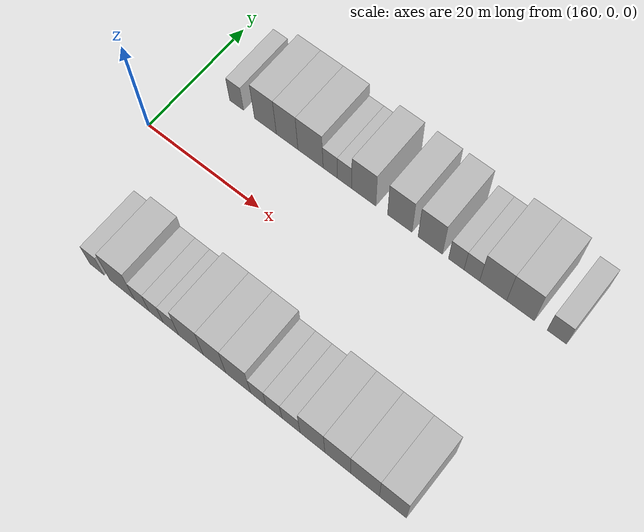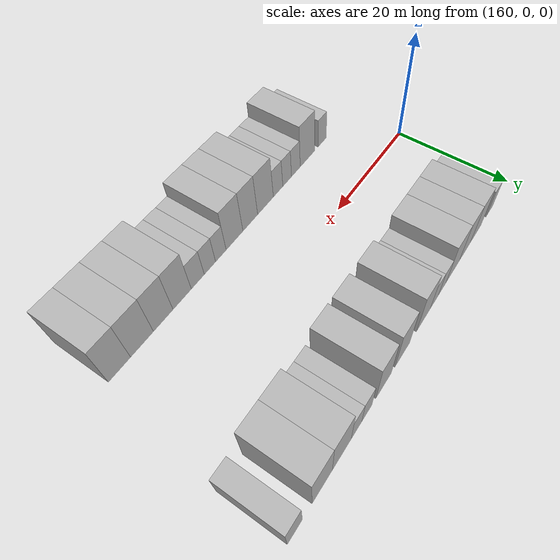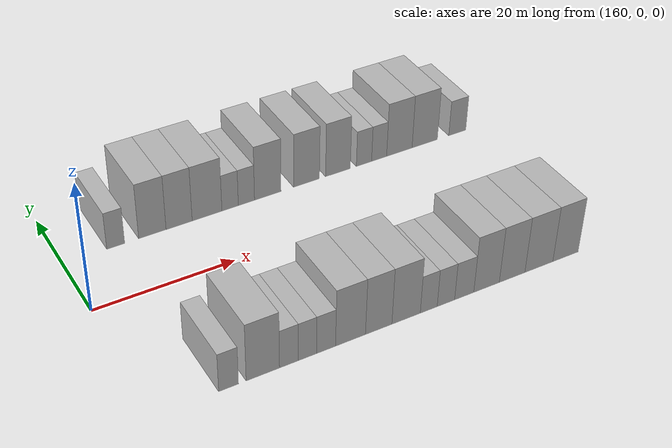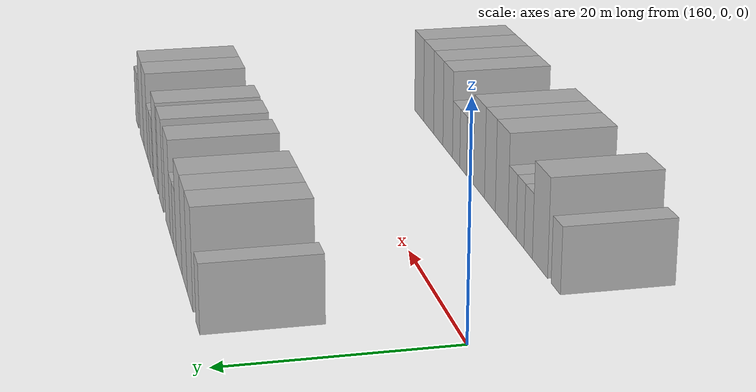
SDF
<sdf version="1.6">
 <world name="default">
  <model name="building_43">
   <static>1</static>
   <pose>167.4110 15.0000 0 0.000000 0.000000 1.570796</pose>
   <link name="link">
    <pose>0 0 3.00 0 0 0</pose>
    <collision name="collision"><geometry><box><size>10.0000 2.5448 6.0000</size></box></geometry></collision>
    <visual name="visual">
     <cast_shadows>0</cast_shadows>
     <geometry><box><size>10.0000 2.5448 6.0000</size></box></geometry>
     <material>
      <script>
       <uri>model://HANNAS_wall/materials/scripts</uri>
       <uri>model://HANNAS_wall/materials/textures</uri>
       <name>vrc/HANNAS_wall</name>
      </script>
     </material>
    </visual>
   </link>
  </model>
  <model name="building_44">
   <static>1</static>
   <pose>172.6693 15.0000 0 0.000000 0.000000 1.570796</pose>
   <link name="link">
    <pose>0 0 4.50 0 0 0</pose>
    <collision name="collision"><geometry><box><size>10.0000 3.9719 9.0000</size></box></geometry></collision>
    <visual name="visual">
     <cast_shadows>0</cast_shadows>
     <geometry><box><size>10.0000 3.9719 9.0000</size></box></geometry>
     <material>
      <script>
       <uri>model://HANNAS_wall/materials/scripts</uri>
       <uri>model://HANNAS_wall/materials/textures</uri>
       <name>vrc/HANNAS_wall</name>
      </script>
     </material>
    </visual>
   </link>
  </model>
  <model name="building_45">
   <static>1</static>
   <pose>176.5831 15.0000 0 0.000000 0.000000 1.570796</pose>
   <link name="link">
    <pose>0 0 4.50 0 0 0</pose>
    <collision name="collision"><geometry><box><size>10.0000 3.8555 9.0000</size></box></geometry></collision>
    <visual name="visual">
     <cast_shadows>0</cast_shadows>
     <geometry><box><size>10.0000 3.8555 9.0000</size></box></geometry>
     <material>
      <script>
       <uri>model://HANNAS_wall/materials/scripts</uri>
       <uri>model://HANNAS_wall/materials/textures</uri>
       <name>vrc/HANNAS_wall</name>
      </script>
     </material>
    </visual>
   </link>
  </model>
  <model name="building_46">
   <static>1</static>
   <pose>180.7405 15.0000 0 0.000000 0.000000 1.570796</pose>
   <link name="link">
    <pose>0 0 4.50 0 0 0</pose>
    <collision name="collision"><geometry><box><size>10.0000 4.4594 9.0000</size></box></geometry></collision>
    <visual name="visual">
     <cast_shadows>0</cast_shadows>
     <geometry><box><size>10.0000 4.4594 9.0000</size></box></geometry>
     <material>
      <script>
       <uri>model://HANNAS_wall/materials/scripts</uri>
       <uri>model://HANNAS_wall/materials/textures</uri>
       <name>vrc/HANNAS_wall</name>
      </script>
     </material>
    </visual>
   </link>
  </model>
  <model name="building_47">
   <static>1</static>
   <pose>184.2190 15.0000 0 0.000000 0.000000 1.570796</pose>
   <link name="link">
    <pose>0 0 3.00 0 0 0</pose>
    <collision name="collision"><geometry><box><size>10.0000 2.4976 6.0000</size></box></geometry></collision>
    <visual name="visual">
     <cast_shadows>0</cast_shadows>
     <geometry><box><size>10.0000 2.4976 6.0000</size></box></geometry>
     <material>
      <script>
       <uri>model://HANNAS_wall/materials/scripts</uri>
       <uri>model://HANNAS_wall/materials/textures</uri>
       <name>vrc/HANNAS_wall</name>
      </script>
     </material>
    </visual>
   </link>
  </model>
  <model name="building_48">
   <static>1</static>
   <pose>186.7154 15.0000 0 0.000000 0.000000 1.570796</pose>
   <link name="link">
    <pose>0 0 3.00 0 0 0</pose>
    <collision name="collision"><geometry><box><size>10.0000 2.4953 6.0000</size></box></geometry></collision>
    <visual name="visual">
     <cast_shadows>0</cast_shadows>
     <geometry><box><size>10.0000 2.4953 6.0000</size></box></geometry>
     <material>
      <script>
       <uri>model://HANNAS_wall/materials/scripts</uri>
       <uri>model://HANNAS_wall/materials/textures</uri>
       <name>vrc/HANNAS_wall</name>
      </script>
     </material>
    </visual>
   </link>
  </model>
  <model name="building_49">
   <static>1</static>
   <pose>190.0253 15.0000 0 0.000000 0.000000 1.570796</pose>
   <link name="link">
    <pose>0 0 4.50 0 0 0</pose>
    <collision name="collision"><geometry><box><size>10.0000 4.1245 9.0000</size></box></geometry></collision>
    <visual name="visual">
     <cast_shadows>0</cast_shadows>
     <geometry><box><size>10.0000 4.1245 9.0000</size></box></geometry>
     <material>
      <script>
       <uri>model://HANNAS_wall/materials/scripts</uri>
       <uri>model://HANNAS_wall/materials/textures</uri>
       <name>vrc/HANNAS_wall</name>
      </script>
     </material>
    </visual>
   </link>
  </model>
  <model name="building_50">
   <static>1</static>
   <pose>196.1464 15.0000 0 0.000000 0.000000 1.570796</pose>
   <link name="link">
    <pose>0 0 4.50 0 0 0</pose>
    <collision name="collision"><geometry><box><size>10.0000 4.1176 9.0000</size></box></geometry></collision>
    <visual name="visual">
     <cast_shadows>0</cast_shadows>
     <geometry><box><size>10.0000 4.1176 9.0000</size></box></geometry>
     <material>
      <script>
       <uri>model://HANNAS_wall/materials/scripts</uri>
       <uri>model://HANNAS_wall/materials/textures</uri>
       <name>vrc/HANNAS_wall</name>
      </script>
     </material>
    </visual>
   </link>
  </model>
  <model name="building_51">
   <static>1</static>
   <pose>201.2211 15.0000 0 0.000000 0.000000 1.570796</pose>
   <link name="link">
    <pose>0 0 4.50 0 0 0</pose>
    <collision name="collision"><geometry><box><size>10.0000 4.0319 9.0000</size></box></geometry></collision>
    <visual name="visual">
     <cast_shadows>0</cast_shadows>
     <geometry><box><size>10.0000 4.0319 9.0000</size></box></geometry>
     <material>
      <script>
       <uri>model://HANNAS_wall/materials/scripts</uri>
       <uri>model://HANNAS_wall/materials/textures</uri>
       <name>vrc/HANNAS_wall</name>
      </script>
     </material>
    </visual>
   </link>
  </model>
  <model name="building_52">
   <static>1</static>
   <pose>205.5053 15.0000 0 0.000000 0.000000 1.570796</pose>
   <link name="link">
    <pose>0 0 3.00 0 0 0</pose>
    <collision name="collision"><geometry><box><size>10.0000 2.5364 6.0000</size></box></geometry></collision>
    <visual name="visual">
     <cast_shadows>0</cast_shadows>
     <geometry><box><size>10.0000 2.5364 6.0000</size></box></geometry>
     <material>
      <script>
       <uri>model://HANNAS_wall/materials/scripts</uri>
       <uri>model://HANNAS_wall/materials/textures</uri>
       <name>vrc/HANNAS_wall</name>
      </script>
     </material>
    </visual>
   </link>
  </model>
  <model name="building_53">
   <static>1</static>
   <pose>208.0329 15.0000 0 0.000000 0.000000 1.570796</pose>
   <link name="link">
    <pose>0 0 3.00 0 0 0</pose>
    <collision name="collision"><geometry><box><size>10.0000 2.5187 6.0000</size></box></geometry></collision>
    <visual name="visual">
     <cast_shadows>0</cast_shadows>
     <geometry><box><size>10.0000 2.5187 6.0000</size></box></geometry>
     <material>
      <script>
       <uri>model://HANNAS_wall/materials/scripts</uri>
       <uri>model://HANNAS_wall/materials/textures</uri>
       <name>vrc/HANNAS_wall</name>
      </script>
     </material>
    </visual>
   </link>
  </model>
  <model name="building_54">
   <static>1</static>
   <pose>211.4570 15.0000 0 0.000000 0.000000 1.570796</pose>
   <link name="link">
    <pose>0 0 4.50 0 0 0</pose>
    <collision name="collision"><geometry><box><size>10.0000 4.3296 9.0000</size></box></geometry></collision>
    <visual name="visual">
     <cast_shadows>0</cast_shadows>
     <geometry><box><size>10.0000 4.3296 9.0000</size></box></geometry>
     <material>
      <script>
       <uri>model://HANNAS_wall/materials/scripts</uri>
       <uri>model://HANNAS_wall/materials/textures</uri>
       <name>vrc/HANNAS_wall</name>
      </script>
     </material>
    </visual>
   </link>
  </model>
  <model name="building_55">
   <static>1</static>
   <pose>215.8085 15.0000 0 0.000000 0.000000 1.570796</pose>
   <link name="link">
    <pose>0 0 4.50 0 0 0</pose>
    <collision name="collision"><geometry><box><size>10.0000 4.3734 9.0000</size></box></geometry></collision>
    <visual name="visual">
     <cast_shadows>0</cast_shadows>
     <geometry><box><size>10.0000 4.3734 9.0000</size></box></geometry>
     <material>
      <script>
       <uri>model://HANNAS_wall/materials/scripts</uri>
       <uri>model://HANNAS_wall/materials/textures</uri>
       <name>vrc/HANNAS_wall</name>
      </script>
     </material>
    </visual>
   </link>
  </model>
  <model name="building_56">
   <static>1</static>
   <pose>221.4932 15.0000 0 0.000000 0.000000 1.570796</pose>
   <link name="link">
    <pose>0 0 3.00 0 0 0</pose>
    <collision name="collision"><geometry><box><size>10.0000 2.9960 6.0000</size></box></geometry></collision>
    <visual name="visual">
     <cast_shadows>0</cast_shadows>
     <geometry><box><size>10.0000 2.9960 6.0000</size></box></geometry>
     <material>
      <script>
       <uri>model://HANNAS_wall/materials/scripts</uri>
       <uri>model://HANNAS_wall/materials/textures</uri>
       <name>vrc/HANNAS_wall</name>
      </script>
     </material>
    </visual>
   </link>
  </model>
  <model name="building_100">
   <static>1</static>
   <pose>169.2188 -15.0000 0 0.000000 0.000000 1.570796</pose>
   <link name="link">
    <pose>0 0 3.00 0 0 0</pose>
    <collision name="collision"><geometry><box><size>10.0000 2.5788 6.0000</size></box></geometry></collision>
    <visual name="visual">
     <cast_shadows>0</cast_shadows>
     <geometry><box><size>10.0000 2.5788 6.0000</size></box></geometry>
     <material>
      <script>
       <uri>model://HANNAS_wall/materials/scripts</uri>
       <uri>model://HANNAS_wall/materials/textures</uri>
       <name>vrc/HANNAS_wall</name>
      </script>
     </material>
    </visual>
   </link>
  </model>
  <model name="building_101">
   <static>1</static>
   <pose>173.7243 -15.0000 0 0.000000 0.000000 1.570796</pose>
   <link name="link">
    <pose>0 0 4.50 0 0 0</pose>
    <collision name="collision"><geometry><box><size>10.0000 4.4321 9.0000</size></box></geometry></collision>
    <visual name="visual">
     <cast_shadows>0</cast_shadows>
     <geometry><box><size>10.0000 4.4321 9.0000</size></box></geometry>
     <material>
      <script>
       <uri>model://HANNAS_wall/materials/scripts</uri>
       <uri>model://HANNAS_wall/materials/textures</uri>
       <name>vrc/HANNAS_wall</name>
      </script>
     </material>
    </visual>
   </link>
  </model>
  <model name="building_102">
   <static>1</static>
   <pose>177.2162 -15.0000 0 0.000000 0.000000 1.570796</pose>
   <link name="link">
    <pose>0 0 3.00 0 0 0</pose>
    <collision name="collision"><geometry><box><size>10.0000 2.5517 6.0000</size></box></geometry></collision>
    <visual name="visual">
     <cast_shadows>0</cast_shadows>
     <geometry><box><size>10.0000 2.5517 6.0000</size></box></geometry>
     <material>
      <script>
       <uri>model://HANNAS_wall/materials/scripts</uri>
       <uri>model://HANNAS_wall/materials/textures</uri>
       <name>vrc/HANNAS_wall</name>
      </script>
     </material>
    </visual>
   </link>
  </model>
  <model name="building_103">
   <static>1</static>
   <pose>179.7285 -15.0000 0 0.000000 0.000000 1.570796</pose>
   <link name="link">
    <pose>0 0 3.00 0 0 0</pose>
    <collision name="collision"><geometry><box><size>10.0000 2.4728 6.0000</size></box></geometry></collision>
    <visual name="visual">
     <cast_shadows>0</cast_shadows>
     <geometry><box><size>10.0000 2.4728 6.0000</size></box></geometry>
     <material>
      <script>
       <uri>model://HANNAS_wall/materials/scripts</uri>
       <uri>model://HANNAS_wall/materials/textures</uri>
       <name>vrc/HANNAS_wall</name>
      </script>
     </material>
    </visual>
   </link>
  </model>
  <model name="building_104">
   <static>1</static>
   <pose>182.2795 -15.0000 0 0.000000 0.000000 1.570796</pose>
   <link name="link">
    <pose>0 0 3.00 0 0 0</pose>
    <collision name="collision"><geometry><box><size>10.0000 2.6292 6.0000</size></box></geometry></collision>
    <visual name="visual">
     <cast_shadows>0</cast_shadows>
     <geometry><box><size>10.0000 2.6292 6.0000</size></box></geometry>
     <material>
      <script>
       <uri>model://HANNAS_wall/materials/scripts</uri>
       <uri>model://HANNAS_wall/materials/textures</uri>
       <name>vrc/HANNAS_wall</name>
      </script>
     </material>
    </visual>
   </link>
  </model>
  <model name="building_105">
   <static>1</static>
   <pose>185.7002 -15.0000 0 0.000000 0.000000 1.570796</pose>
   <link name="link">
    <pose>0 0 4.50 0 0 0</pose>
    <collision name="collision"><geometry><box><size>10.0000 4.2122 9.0000</size></box></geometry></collision>
    <visual name="visual">
     <cast_shadows>0</cast_shadows>
     <geometry><box><size>10.0000 4.2122 9.0000</size></box></geometry>
     <material>
      <script>
       <uri>model://HANNAS_wall/materials/scripts</uri>
       <uri>model://HANNAS_wall/materials/textures</uri>
       <name>vrc/HANNAS_wall</name>
      </script>
     </material>
    </visual>
   </link>
  </model>
  <model name="building_106">
   <static>1</static>
   <pose>189.7027 -15.0000 0 0.000000 0.000000 1.570796</pose>
   <link name="link">
    <pose>0 0 4.50 0 0 0</pose>
    <collision name="collision"><geometry><box><size>10.0000 3.7927 9.0000</size></box></geometry></collision>
    <visual name="visual">
     <cast_shadows>0</cast_shadows>
     <geometry><box><size>10.0000 3.7927 9.0000</size></box></geometry>
     <material>
      <script>
       <uri>model://HANNAS_wall/materials/scripts</uri>
       <uri>model://HANNAS_wall/materials/textures</uri>
       <name>vrc/HANNAS_wall</name>
      </script>
     </material>
    </visual>
   </link>
  </model>
  <model name="building_107">
   <static>1</static>
   <pose>193.6695 -15.0000 0 0.000000 0.000000 1.570796</pose>
   <link name="link">
    <pose>0 0 4.50 0 0 0</pose>
    <collision name="collision"><geometry><box><size>10.0000 4.1409 9.0000</size></box></geometry></collision>
    <visual name="visual">
     <cast_shadows>0</cast_shadows>
     <geometry><box><size>10.0000 4.1409 9.0000</size></box></geometry>
     <material>
      <script>
       <uri>model://HANNAS_wall/materials/scripts</uri>
       <uri>model://HANNAS_wall/materials/textures</uri>
       <name>vrc/HANNAS_wall</name>
      </script>
     </material>
    </visual>
   </link>
  </model>
  <model name="building_108">
   <static>1</static>
   <pose>196.9914 -15.0000 0 0.000000 0.000000 1.570796</pose>
   <link name="link">
    <pose>0 0 3.00 0 0 0</pose>
    <collision name="collision"><geometry><box><size>10.0000 2.5029 6.0000</size></box></geometry></collision>
    <visual name="visual">
     <cast_shadows>0</cast_shadows>
     <geometry><box><size>10.0000 2.5029 6.0000</size></box></geometry>
     <material>
      <script>
       <uri>model://HANNAS_wall/materials/scripts</uri>
       <uri>model://HANNAS_wall/materials/textures</uri>
       <name>vrc/HANNAS_wall</name>
      </script>
     </material>
    </visual>
   </link>
  </model>
  <model name="building_109">
   <static>1</static>
   <pose>199.5492 -15.0000 0 0.000000 0.000000 1.570796</pose>
   <link name="link">
    <pose>0 0 3.00 0 0 0</pose>
    <collision name="collision"><geometry><box><size>10.0000 2.6128 6.0000</size></box></geometry></collision>
    <visual name="visual">
     <cast_shadows>0</cast_shadows>
     <geometry><box><size>10.0000 2.6128 6.0000</size></box></geometry>
     <material>
      <script>
       <uri>model://HANNAS_wall/materials/scripts</uri>
       <uri>model://HANNAS_wall/materials/textures</uri>
       <name>vrc/HANNAS_wall</name>
      </script>
     </material>
    </visual>
   </link>
  </model>
  <model name="building_110">
   <static>1</static>
   <pose>202.3090 -15.0000 0 0.000000 0.000000 1.570796</pose>
   <link name="link">
    <pose>0 0 3.00 0 0 0</pose>
    <collision name="collision"><geometry><box><size>10.0000 2.9069 6.0000</size></box></geometry></collision>
    <visual name="visual">
     <cast_shadows>0</cast_shadows>
     <geometry><box><size>10.0000 2.9069 6.0000</size></box></geometry>
     <material>
      <script>
       <uri>model://HANNAS_wall/materials/scripts</uri>
       <uri>model://HANNAS_wall/materials/textures</uri>
       <name>vrc/HANNAS_wall</name>
      </script>
     </material>
    </visual>
   </link>
  </model>
  <model name="building_111">
   <static>1</static>
   <pose>205.7291 -15.0000 0 0.000000 0.000000 1.570796</pose>
   <link name="link">
    <pose>0 0 4.50 0 0 0</pose>
    <collision name="collision"><geometry><box><size>10.0000 3.9332 9.0000</size></box></geometry></collision>
    <visual name="visual">
     <cast_shadows>0</cast_shadows>
     <geometry><box><size>10.0000 3.9332 9.0000</size></box></geometry>
     <material>
      <script>
       <uri>model://HANNAS_wall/materials/scripts</uri>
       <uri>model://HANNAS_wall/materials/textures</uri>
       <name>vrc/HANNAS_wall</name>
      </script>
     </material>
    </visual>
   </link>
  </model>
  <model name="building_112">
   <static>1</static>
   <pose>209.7044 -15.0000 0 0.000000 0.000000 1.570796</pose>
   <link name="link">
    <pose>0 0 4.50 0 0 0</pose>
    <collision name="collision"><geometry><box><size>10.0000 4.0175 9.0000</size></box></geometry></collision>
    <visual name="visual">
     <cast_shadows>0</cast_shadows>
     <geometry><box><size>10.0000 4.0175 9.0000</size></box></geometry>
     <material>
      <script>
       <uri>model://HANNAS_wall/materials/scripts</uri>
       <uri>model://HANNAS_wall/materials/textures</uri>
       <name>vrc/HANNAS_wall</name>
      </script>
     </material>
    </visual>
   </link>
  </model>
  <model name="building_113">
   <static>1</static>
   <pose>213.9456 -15.0000 0 0.000000 0.000000 1.570796</pose>
   <link name="link">
    <pose>0 0 4.50 0 0 0</pose>
    <collision name="collision"><geometry><box><size>10.0000 4.4648 9.0000</size></box></geometry></collision>
    <visual name="visual">
     <cast_shadows>0</cast_shadows>
     <geometry><box><size>10.0000 4.4648 9.0000</size></box></geometry>
     <material>
      <script>
       <uri>model://HANNAS_wall/materials/scripts</uri>
       <uri>model://HANNAS_wall/materials/textures</uri>
       <name>vrc/HANNAS_wall</name>
      </script>
     </material>
    </visual>
   </link>
  </model>
  <model name="building_114">
   <static>1</static>
   <pose>218.2349 -15.0000 0 0.000000 0.000000 1.570796</pose>
   <link name="link">
    <pose>0 0 4.50 0 0 0</pose>
    <collision name="collision"><geometry><box><size>10.0000 4.1138 9.0000</size></box></geometry></collision>
    <visual name="visual">
     <cast_shadows>0</cast_shadows>
     <geometry><box><size>10.0000 4.1138 9.0000</size></box></geometry>
     <material>
      <script>
       <uri>model://HANNAS_wall/materials/scripts</uri>
       <uri>model://HANNAS_wall/materials/textures</uri>
       <name>vrc/HANNAS_wall</name>
      </script>
     </material>
    </visual>
   </link>
  </model>
 </world>
</sdf>
